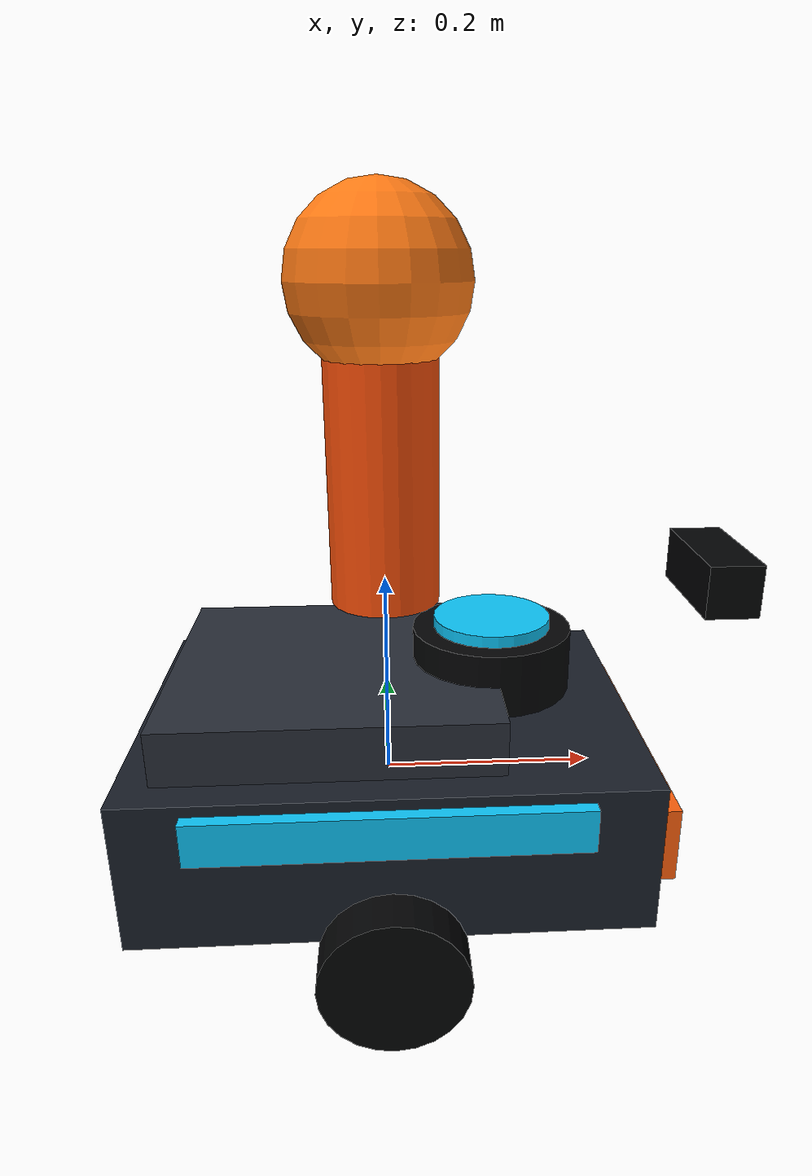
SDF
<?xml version="1.0" ?>
<sdf version="1.9">
  <model name="campus_patrol_robot">
    <static>false</static>
    <self_collide>false</self_collide>
    <allow_auto_disable>false</allow_auto_disable>

    <link name="base_footprint">
      <pose>0 0 -0.145 0 0 0</pose>
    </link>
    <link name="base_link">
      <inertial>
        <mass>5.0</mass>
        <inertia><ixx>0.09</ixx><ixy>0</ixy><ixz>0</ixz><iyy>0.12</iyy><iyz>0</iyz><izz>0.18</izz></inertia>
      </inertial>
      <collision name="body_collision"><geometry><box><size>0.46 0.34 0.14</size></box></geometry></collision>
      <visual name="body_visual"><geometry><box><size>0.46 0.34 0.14</size></box></geometry><material><ambient>0.04 0.05 0.07 1</ambient><diffuse>0.10 0.12 0.16 1</diffuse><specular>0.20 0.22 0.26 1</specular></material></visual>
      <visual name="upper_deck"><pose>-0.05 0 0.09 0 0 0</pose><geometry><box><size>0.30 0.28 0.06</size></box></geometry><material><ambient>0.09 0.10 0.13 1</ambient><diffuse>0.16 0.18 0.22 1</diffuse></material></visual>
      <visual name="front_status_light"><pose>0.235 0 0 0 0 0</pose><geometry><box><size>0.03 0.30 0.07</size></box></geometry><material><emissive>0.90 0.22 0.02 1</emissive><diffuse>1.00 0.38 0.05 1</diffuse></material></visual>
      <visual name="cyan_outline_left"><pose>0 0.176 0.04 0 0 0</pose><geometry><box><size>0.34 0.012 0.04</size></box></geometry><material><emissive>0.02 0.38 0.56 1</emissive><diffuse>0.05 0.78 0.98 1</diffuse></material></visual>
      <visual name="cyan_outline_right"><pose>0 -0.176 0.04 0 0 0</pose><geometry><box><size>0.34 0.012 0.04</size></box></geometry><material><emissive>0.02 0.38 0.56 1</emissive><diffuse>0.05 0.78 0.98 1</diffuse></material></visual>
      <visual name="beacon_light"><pose>0 0 0.32 0 0 0</pose><geometry><cylinder><radius>0.05</radius><length>0.28</length></cylinder></geometry><material><emissive>0.85 0.18 0.02 1</emissive><diffuse>1.00 0.32 0.04 1</diffuse></material></visual>
      <visual name="beacon_tip"><pose>0 0 0.46 0 0 0</pose><geometry><sphere><radius>0.08</radius></sphere></geometry><material><emissive>1.00 0.30 0.03 1</emissive><diffuse>1.00 0.48 0.08 1</diffuse></material></visual>
    </link>

    <link name="wheel_left_link">
      <pose>0 0.20 -0.08 -1.5708 0 0</pose>
      <inertial><mass>0.25</mass><inertia><ixx>0.001</ixx><ixy>0</ixy><ixz>0</ixz><iyy>0.001</iyy><iyz>0</iyz><izz>0.001</izz></inertia></inertial>
      <collision name="wheel_left_collision"><geometry><cylinder><radius>0.065</radius><length>0.04</length></cylinder></geometry><surface><friction><ode><mu>1.2</mu><mu2>1.2</mu2><slip1>0.02</slip1><slip2>0.0</slip2><fdir1>1 0 0</fdir1></ode></friction></surface></collision>
      <visual name="wheel_left_visual"><geometry><cylinder><radius>0.065</radius><length>0.04</length></cylinder></geometry><material><diffuse>0.01 0.012 0.016 1</diffuse></material></visual>
    </link>
    <link name="wheel_right_link">
      <pose>0 -0.20 -0.08 -1.5708 0 0</pose>
      <inertial><mass>0.25</mass><inertia><ixx>0.001</ixx><ixy>0</ixy><ixz>0</ixz><iyy>0.001</iyy><iyz>0</iyz><izz>0.001</izz></inertia></inertial>
      <collision name="wheel_right_collision"><geometry><cylinder><radius>0.065</radius><length>0.04</length></cylinder></geometry><surface><friction><ode><mu>1.2</mu><mu2>1.2</mu2><slip1>0.02</slip1><slip2>0.0</slip2><fdir1>1 0 0</fdir1></ode></friction></surface></collision>
      <visual name="wheel_right_visual"><geometry><cylinder><radius>0.065</radius><length>0.04</length></cylinder></geometry><material><diffuse>0.01 0.012 0.016 1</diffuse></material></visual>
    </link>
    <link name="caster_link">
      <pose>-0.18 0 -0.10 0 0 0</pose>
      <inertial><mass>0.05</mass><inertia><ixx>0.0001</ixx><ixy>0</ixy><ixz>0</ixz><iyy>0.0001</iyy><iyz>0</iyz><izz>0.0001</izz></inertia></inertial>
      <collision name="caster_collision"><geometry><sphere><radius>0.045</radius></sphere></geometry></collision>
      <visual name="caster_visual"><geometry><sphere><radius>0.045</radius></sphere></geometry><material><diffuse>0.01 0.012 0.016 1</diffuse></material></visual>
    </link>
    <link name="laser_link">
      <pose>0.10 0 0.12 0 0 0</pose>
      <inertial><mass>0.12</mass><inertia><ixx>0.001</ixx><ixy>0</ixy><ixz>0</ixz><iyy>0.001</iyy><iyz>0</iyz><izz>0.001</izz></inertia></inertial>
      <visual name="laser_housing"><geometry><cylinder><radius>0.075</radius><length>0.06</length></cylinder></geometry><material><diffuse>0.015 0.018 0.022 1</diffuse></material></visual>
      <visual name="laser_status"><pose>0 0 0.035 0 0 0</pose><geometry><cylinder><radius>0.055</radius><length>0.012</length></cylinder></geometry><material><emissive>0.02 0.38 0.56 1</emissive><diffuse>0.05 0.78 0.98 1</diffuse></material></visual>
      <sensor name="laser" type="gpu_lidar">
        <always_on>true</always_on>
        <update_rate>5</update_rate>
        <topic>/scan</topic>
        <gz_frame_id>laser_link</gz_frame_id>
         <visualize>true</visualize>
        <ray>
          <scan><horizontal><samples>180</samples><resolution>1</resolution><min_angle>-3.14159</min_angle><max_angle>3.14159</max_angle></horizontal></scan>
          <range><min>0.08</min><max>8.0</max><resolution>0.01</resolution></range>
          <noise><type>gaussian</type><mean>0.0</mean><stddev>0.005</stddev></noise>
        </ray>
      </sensor>
    </link>
    <link name="camera_link">
      <pose>0.31 0 0.20 0 0 0</pose>
      <visual name="camera_visual"><geometry><box><size>0.05 0.12 0.05</size></box></geometry><material><diffuse>0.01 0.012 0.016 1</diffuse></material></visual>
      <sensor name="front_camera" type="camera">
        <always_on>true</always_on>
        <update_rate>3</update_rate>
        <topic>/camera/image_raw</topic>
        <gz_frame_id>camera_link</gz_frame_id>
        <camera name="front_camera">
          <horizontal_fov>1.0472</horizontal_fov>
          <image><width>320</width><height>180</height><format>R8G8B8</format></image>
          <clip><near>0.05</near><far>12.0</far></clip>
        </camera>
      </sensor>
    </link>

    <joint name="base_joint" type="fixed"><parent>base_link</parent><child>base_footprint</child></joint>
    <joint name="wheel_left_joint" type="revolute"><parent>base_link</parent><child>wheel_left_link</child><axis><xyz>0 0 1</xyz><limit><lower>-1e16</lower><upper>1e16</upper></limit></axis></joint>
    <joint name="wheel_right_joint" type="revolute"><parent>base_link</parent><child>wheel_right_link</child><axis><xyz>0 0 1</xyz><limit><lower>-1e16</lower><upper>1e16</upper></limit></axis></joint>
    <joint name="caster_joint" type="ball"><parent>base_link</parent><child>caster_link</child></joint>
    <joint name="laser_joint" type="fixed"><parent>base_link</parent><child>laser_link</child></joint>
    <joint name="camera_joint" type="fixed"><parent>base_link</parent><child>camera_link</child></joint>

    <plugin filename="gz-sim-diff-drive-system" name="gz::sim::systems::DiffDrive">
      <left_joint>wheel_left_joint</left_joint>
      <right_joint>wheel_right_joint</right_joint>
      <wheel_separation>0.40</wheel_separation>
      <wheel_radius>0.065</wheel_radius>
      <topic>/cmd_vel</topic>
      <odom_topic>/odom</odom_topic>
      <tf_topic>/tf</tf_topic>
      <frame_id>odom</frame_id>
      <child_frame_id>base_footprint</child_frame_id>
      <odom_publish_frequency>30</odom_publish_frequency>
      <max_linear_acceleration>0.8</max_linear_acceleration>
      <min_linear_acceleration>-0.8</min_linear_acceleration>
      <max_angular_acceleration>2.0</max_angular_acceleration>
      <min_angular_acceleration>-2.0</min_angular_acceleration>
      <max_linear_velocity>0.35</max_linear_velocity>
      <min_linear_velocity>-0.35</min_linear_velocity>
      <max_angular_velocity>0.9</max_angular_velocity>
      <min_angular_velocity>-0.9</min_angular_velocity>
    </plugin>

  </model>
</sdf>
